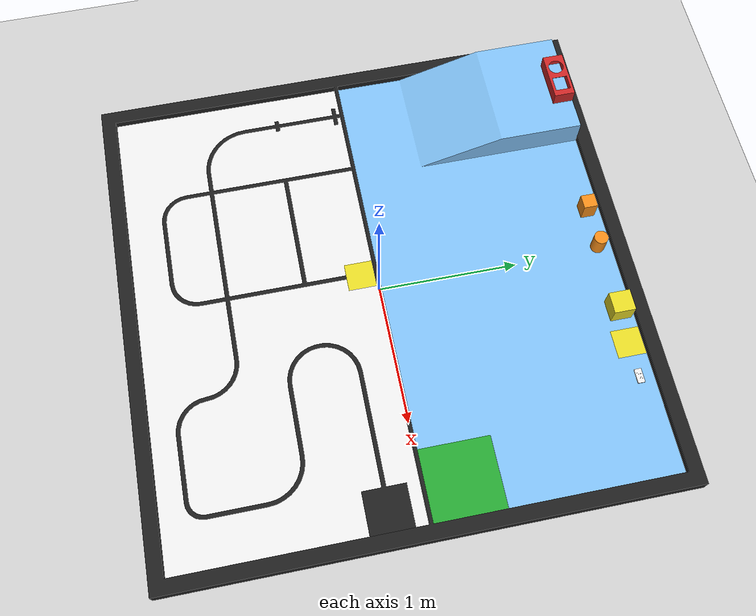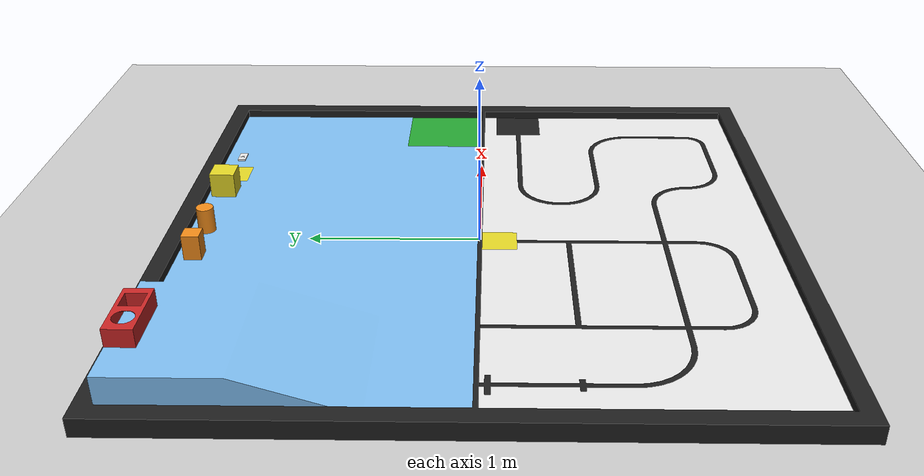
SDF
<sdf version="1.6">
 <world name="default">
  <light name="sun" type="directional">
   <pose>0 0 10 0 -0 0</pose>
   <diffuse>0.8 0.8 0.8 1</diffuse>
   <specular>0.2 0.2 0.2 1</specular>
   <attenuation>
    <range>1000</range>
    <constant>0.9</constant>
    <linear>0.01</linear>
    <quadratic>0.001</quadratic>
   </attenuation>
   <direction>-0.5 0.1 -0.9</direction>
  </light>
  <model name="ground_plane">
   <static>1</static>
   <link name="link">
    <collision name="collision">
     <geometry><plane><normal>0 0 1</normal><size>100 100</size></plane></geometry>
     <surface>
      <contact><collide_bitmask>65535</collide_bitmask></contact>
      <friction><ode><mu>100</mu><mu2>50</mu2></ode></friction>
     </surface>
    </collision>
    <visual name="visual">
     <cast_shadows>0</cast_shadows>
     <geometry><plane><normal>0 0 1</normal><size>100 100</size></plane></geometry>
     <material>
      <script><uri>file://media/materials/scripts/gazebo.material</uri><name>Gazebo/Grey</name></script>
     </material>
    </visual>
   </link>
  </model>
  <gravity>0 0 -9.8</gravity>
  <magnetic_field>6e-06 2.3e-05 -4.2e-05</magnetic_field>
  <atmosphere type="adiabatic"/>
  <physics name="default_physics" default="0" type="ode">
   <max_step_size>0.001</max_step_size>
   <real_time_factor>1</real_time_factor>
   <real_time_update_rate>1000</real_time_update_rate>
  </physics>
  <scene><ambient>0.4 0.4 0.4 1</ambient><background>0.7 0.7 0.7 1</background><shadows>1</shadows></scene>
  <audio><device>default</device></audio>
  <spherical_coordinates>
   <surface_model>EARTH_WGS84</surface_model>
   <latitude_deg>0</latitude_deg>
   <longitude_deg>0</longitude_deg>
   <elevation>0</elevation>
   <heading_deg>0</heading_deg>
  </spherical_coordinates>
  <model name="vrc_demo">
   <link name="areana_base_link">
    <inertial>
     <pose>-0.20143 0.191484 0.049795 0 -0 0</pose>
     <mass>7311.9</mass>
     <inertia>
      <ixx>8738.75</ixx>
      <ixy>1535.79</ixy>
      <ixz>139.3</ixz>
      <iyy>8895.77</iyy>
      <iyz>-137.923</iyz>
      <izz>17597.1</izz>
     </inertia>
    </inertial>
    <collision name="areana_base_link_collision">
     <geometry>
      <mesh>
       <scale>0.001 0.001 0.001</scale>
       <uri>/home/pranshutople/catkin_ws/src/VRC/vrc_demo_description/meshes/areana_base_link.stl</uri>
      </mesh>
     </geometry>
     <surface><friction><ode><mu>1</mu><mu2>1</mu2></ode></friction></surface>
    </collision>
    <collision name="areana_base_link_fixed_joint_lump__mr_start_1_collision_1">
     <geometry>
      <mesh>
       <scale>0.001 0.001 0.001</scale>
       <uri>/home/pranshutople/catkin_ws/src/VRC/vrc_demo_description/meshes/mr_start_1.stl</uri>
      </mesh>
     </geometry>
     <surface><friction><ode><mu>1</mu><mu2>1</mu2></ode></friction></surface>
    </collision>
    <collision name="areana_base_link_fixed_joint_lump__mr_area_1_collision_2">
     <geometry>
      <mesh>
       <scale>0.001 0.001 0.001</scale>
       <uri>/home/pranshutople/catkin_ws/src/VRC/vrc_demo_description/meshes/mr_area_1.stl</uri>
      </mesh>
     </geometry>
     <surface><friction><ode><mu>1</mu><mu2>1</mu2></ode></friction></surface>
    </collision>
    <collision name="areana_base_link_fixed_joint_lump__drop_box_1_collision_3">
     <geometry>
      <mesh>
       <scale>0.001 0.001 0.001</scale>
       <uri>/home/pranshutople/catkin_ws/src/VRC/vrc_demo_description/meshes/drop_box_1.stl</uri>
      </mesh>
     </geometry>
     <surface><friction><ode><mu>1</mu><mu2>1</mu2></ode></friction></surface>
    </collision>
    <collision name="areana_base_link_fixed_joint_lump__plane_surface_1_collision_4">
     <geometry>
      <mesh>
       <scale>0.001 0.001 0.001</scale>
       <uri>/home/pranshutople/catkin_ws/src/VRC/vrc_demo_description/meshes/plane_surface_1.stl</uri>
      </mesh>
     </geometry>
     <surface><friction><ode><mu>1</mu><mu2>1</mu2></ode></friction></surface>
    </collision>
    <collision name="areana_base_link_fixed_joint_lump__plateb_1_collision_5">
     <geometry>
      <mesh>
       <scale>0.001 0.001 0.001</scale>
       <uri>/home/pranshutople/catkin_ws/src/VRC/vrc_demo_description/meshes/plateb_1.stl</uri>
      </mesh>
     </geometry>
     <surface><friction><ode><mu>1</mu><mu2>1</mu2></ode></friction></surface>
    </collision>
    <collision name="areana_base_link_fixed_joint_lump__platea_1_collision_6">
     <geometry>
      <mesh>
       <scale>0.001 0.001 0.001</scale>
       <uri>/home/pranshutople/catkin_ws/src/VRC/vrc_demo_description/meshes/platea_1.stl</uri>
      </mesh>
     </geometry>
     <surface><friction><ode><mu>1</mu><mu2>1</mu2></ode></friction></surface>
    </collision>
    <collision name="areana_base_link_fixed_joint_lump__line_base_1_collision_7">
     <geometry>
      <mesh>
       <scale>0.001 0.001 0.001</scale>
       <uri>/home/pranshutople/catkin_ws/src/VRC/vrc_demo_description/meshes/line_base_1.stl</uri>
      </mesh>
     </geometry>
     <surface><friction><ode><mu>1</mu><mu2>1</mu2></ode></friction></surface>
    </collision>
    <collision name="areana_base_link_fixed_joint_lump__line_track_1_collision_8">
     <geometry>
      <mesh>
       <scale>0.001 0.001 0.001</scale>
       <uri>/home/pranshutople/catkin_ws/src/VRC/vrc_demo_description/meshes/line_track_1.stl</uri>
      </mesh>
     </geometry>
     <surface><friction><ode><mu>1</mu><mu2>1</mu2></ode></friction></surface>
    </collision>
    <collision name="areana_base_link_fixed_joint_lump__auto_plane_surface_1_collision_9">
     <geometry>
      <mesh>
       <scale>0.001 0.001 0.001</scale>
       <uri>/home/pranshutople/catkin_ws/src/VRC/vrc_demo_description/meshes/auto_plane_surface_1.stl</uri>
      </mesh>
     </geometry>
     <surface><friction><ode><mu>1</mu><mu2>1</mu2></ode></friction></surface>
    </collision>
    <visual name="areana_base_link_visual">
     <geometry>
      <mesh>
       <scale>0.001 0.001 0.001</scale>
       <uri>/home/pranshutople/catkin_ws/src/VRC/vrc_demo_description/meshes/areana_base_link.stl</uri>
      </mesh>
     </geometry>
     <material>
      <script><name>Gazebo/Black</name><uri>file://media/materials/scripts/gazebo.material</uri></script>
     </material>
    </visual>
    <visual name="areana_base_link_fixed_joint_lump__mr_start_1_visual_1">
     <geometry>
      <mesh>
       <scale>0.001 0.001 0.001</scale>
       <uri>/home/pranshutople/catkin_ws/src/VRC/vrc_demo_description/meshes/mr_start_1.stl</uri>
      </mesh>
     </geometry>
     <material>
      <script><name>Gazebo/Green</name><uri>file://media/materials/scripts/gazebo.material</uri></script>
     </material>
    </visual>
    <visual name="areana_base_link_fixed_joint_lump__mr_area_1_visual_2">
     <geometry>
      <mesh>
       <scale>0.001 0.001 0.001</scale>
       <uri>/home/pranshutople/catkin_ws/src/VRC/vrc_demo_description/meshes/mr_area_1.stl</uri>
      </mesh>
     </geometry>
     <material>
      <script><name>Gazebo/SkyBlue</name><uri>file://media/materials/scripts/gazebo.material</uri></script>
     </material>
    </visual>
    <visual name="areana_base_link_fixed_joint_lump__drop_box_1_visual_3">
     <geometry>
      <mesh>
       <scale>0.001 0.001 0.001</scale>
       <uri>/home/pranshutople/catkin_ws/src/VRC/vrc_demo_description/meshes/drop_box_1.stl</uri>
      </mesh>
     </geometry>
     <material>
      <script><name>Gazebo/Red</name><uri>file://media/materials/scripts/gazebo.material</uri></script>
     </material>
    </visual>
    <visual name="areana_base_link_fixed_joint_lump__plane_surface_1_visual_4">
     <geometry>
      <mesh>
       <scale>0.001 0.001 0.001</scale>
       <uri>/home/pranshutople/catkin_ws/src/VRC/vrc_demo_description/meshes/plane_surface_1.stl</uri>
      </mesh>
     </geometry>
     <material>
      <script><name>Gazebo/Yellow</name><uri>file://media/materials/scripts/gazebo.material</uri></script>
     </material>
    </visual>
    <visual name="areana_base_link_fixed_joint_lump__plateb_1_visual_5">
     <geometry>
      <mesh>
       <scale>0.001 0.001 0.001</scale>
       <uri>/home/pranshutople/catkin_ws/src/VRC/vrc_demo_description/meshes/plateb_1.stl</uri>
      </mesh>
     </geometry>
     <material>
      <script><name>Gazebo/White</name><uri>file://media/materials/scripts/gazebo.material</uri></script>
     </material>
    </visual>
    <visual name="areana_base_link_fixed_joint_lump__platea_1_visual_6">
     <geometry>
      <mesh>
       <scale>0.001 0.001 0.001</scale>
       <uri>/home/pranshutople/catkin_ws/src/VRC/vrc_demo_description/meshes/platea_1.stl</uri>
      </mesh>
     </geometry>
     <material>
      <script><name>Gazebo/White</name><uri>file://media/materials/scripts/gazebo.material</uri></script>
     </material>
    </visual>
    <visual name="areana_base_link_fixed_joint_lump__line_base_1_visual_7">
     <geometry>
      <mesh>
       <scale>0.001 0.001 0.001</scale>
       <uri>/home/pranshutople/catkin_ws/src/VRC/vrc_demo_description/meshes/line_base_1.stl</uri>
      </mesh>
     </geometry>
     <material>
      <script><name>Gazebo/White</name><uri>file://media/materials/scripts/gazebo.material</uri></script>
     </material>
    </visual>
    <visual name="areana_base_link_fixed_joint_lump__line_track_1_visual_8">
     <geometry>
      <mesh>
       <scale>0.001 0.001 0.001</scale>
       <uri>/home/pranshutople/catkin_ws/src/VRC/vrc_demo_description/meshes/line_track_1.stl</uri>
      </mesh>
     </geometry>
     <material>
      <script><name>Gazebo/Black</name><uri>file://media/materials/scripts/gazebo.material</uri></script>
     </material>
    </visual>
    <visual name="areana_base_link_fixed_joint_lump__auto_plane_surface_1_visual_9">
     <geometry>
      <mesh>
       <scale>0.001 0.001 0.001</scale>
       <uri>/home/pranshutople/catkin_ws/src/VRC/vrc_demo_description/meshes/auto_plane_surface_1.stl</uri>
      </mesh>
     </geometry>
     <material>
      <script><name>Gazebo/Yellow</name><uri>file://media/materials/scripts/gazebo.material</uri></script>
     </material>
    </visual>
    <self_collide>1</self_collide>
   </link>
  </model>
  <model name="cylinder">
   <link name="cylinder">
    <inertial>
     <pose>0 0 0.075 0 -0 0</pose>
     <mass>0.0654429</mass>
     <inertia>
      <ixx>0.000252</ixx>
      <ixy>0</ixy>
      <ixz>-0</ixz>
      <iyy>0.000252</iyy>
      <iyz>-0</iyz>
      <izz>0.00014</izz>
     </inertia>
    </inertial>
    <collision name="cylinder_collision">
     <geometry>
      <mesh>
       <scale>0.001 0.001 0.001</scale>
       <uri>/home/pranshutople/catkin_ws/src/VRC/cylinder_description/meshes/cylinder.stl</uri>
      </mesh>
     </geometry>
     <surface><friction><ode><mu>1</mu><mu2>1</mu2></ode></friction></surface>
    </collision>
    <visual name="cylinder_visual">
     <geometry>
      <mesh>
       <scale>0.001 0.001 0.001</scale>
       <uri>/home/pranshutople/catkin_ws/src/VRC/cylinder_description/meshes/cylinder.stl</uri>
      </mesh>
     </geometry>
     <material>
      <script><name>Gazebo/Orange</name><uri>file://media/materials/scripts/gazebo.material</uri></script>
     </material>
    </visual>
    <self_collide>1</self_collide>
   </link>
   <pose>0 1.6 0.055 0 -0 0</pose>
  </model>
  <model name="cuboid">
   <link name="cuboid">
    <inertial>
     <pose>-0 -0 0.075 0 -0 0</pose>
     <mass>0.0833245</mass>
     <inertia>
      <ixx>0.00035</ixx>
      <ixy>-0</ixy>
      <ixz>0</ixz>
      <iyy>0.00035</iyy>
      <iyz>0</iyz>
      <izz>0.000238</izz>
     </inertia>
    </inertial>
    <collision name="cuboid_collision">
     <geometry>
      <mesh>
       <scale>0.001 0.001 0.001</scale>
       <uri>/home/pranshutople/catkin_ws/src/VRC/cuboid_description/meshes/cuboid.stl</uri>
      </mesh>
     </geometry>
     <surface><friction><ode><mu>1</mu><mu2>1</mu2></ode></friction></surface>
    </collision>
    <visual name="cuboid_visual">
     <geometry>
      <mesh>
       <scale>0.001 0.001 0.001</scale>
       <uri>/home/pranshutople/catkin_ws/src/VRC/cuboid_description/meshes/cuboid.stl</uri>
      </mesh>
     </geometry>
     <material>
      <script><name>Gazebo/Orange</name><uri>file://media/materials/scripts/gazebo.material</uri></script>
     </material>
    </visual>
    <self_collide>1</self_collide>
   </link>
   <pose>-0.3 1.6 0.055 0 -0 0</pose>
  </model>
  <model name="cube_1">
   <link name="cube_1">
    <inertial>
     <pose>-0 -0 0.089661 0 -0 0</pose>
     <mass>0.117982</mass>
     <inertia>
      <ixx>0.000674</ixx>
      <ixy>0</ixy>
      <ixz>0</ixz>
      <iyy>0.000674</iyy>
      <iyz>-0</iyz>
      <izz>0.000786</izz>
     </inertia>
    </inertial>
    <collision name="cube_1_collision">
     <geometry>
      <mesh>
       <scale>0.001 0.001 0.001</scale>
       <uri>/home/pranshutople/catkin_ws/src/VRC/cube_description/meshes/cube_1.stl</uri>
      </mesh>
     </geometry>
     <surface><friction><ode><mu>1</mu><mu2>1</mu2></ode></friction></surface>
    </collision>
    <visual name="cube_1_visual">
     <geometry>
      <mesh>
       <scale>0.001 0.001 0.001</scale>
       <uri>/home/pranshutople/catkin_ws/src/VRC/cube_description/meshes/cube_1.stl</uri>
      </mesh>
     </geometry>
     <material>
      <script><name>Gazebo/DarkYellow</name><uri>file://media/materials/scripts/gazebo.material</uri></script>
     </material>
    </visual>
    <self_collide>1</self_collide>
   </link>
   <pose>0.5 1.6 0.055 0 -0 0</pose>
  </model>
 </world>
</sdf>
